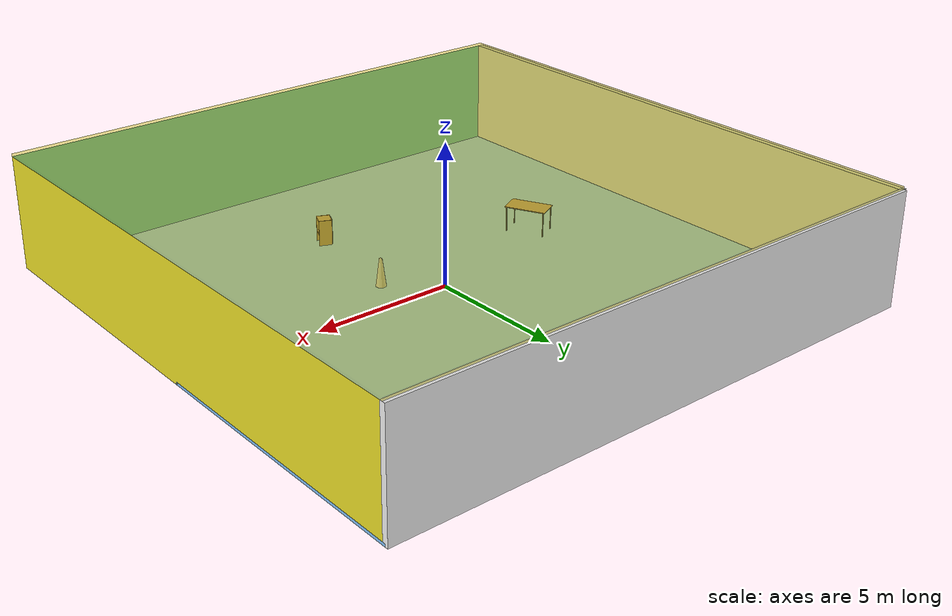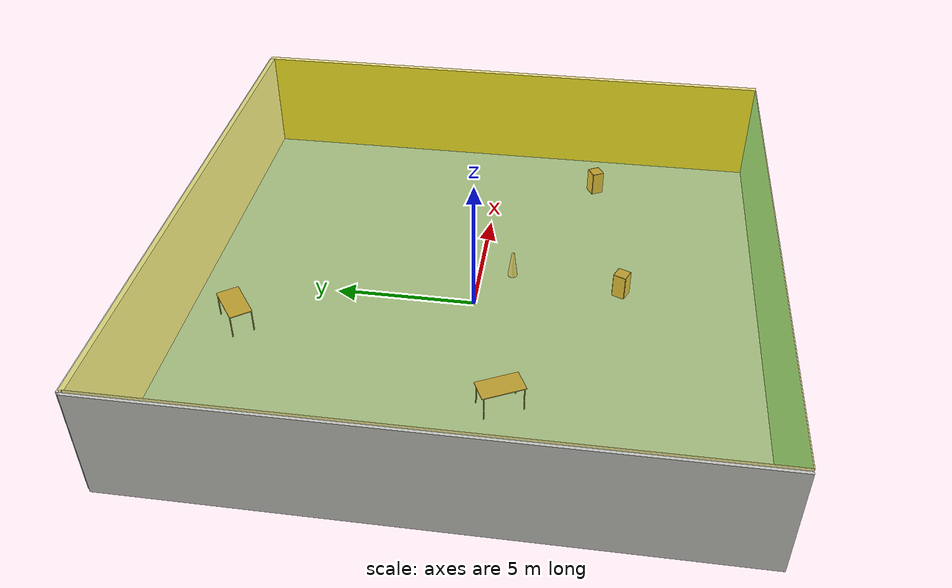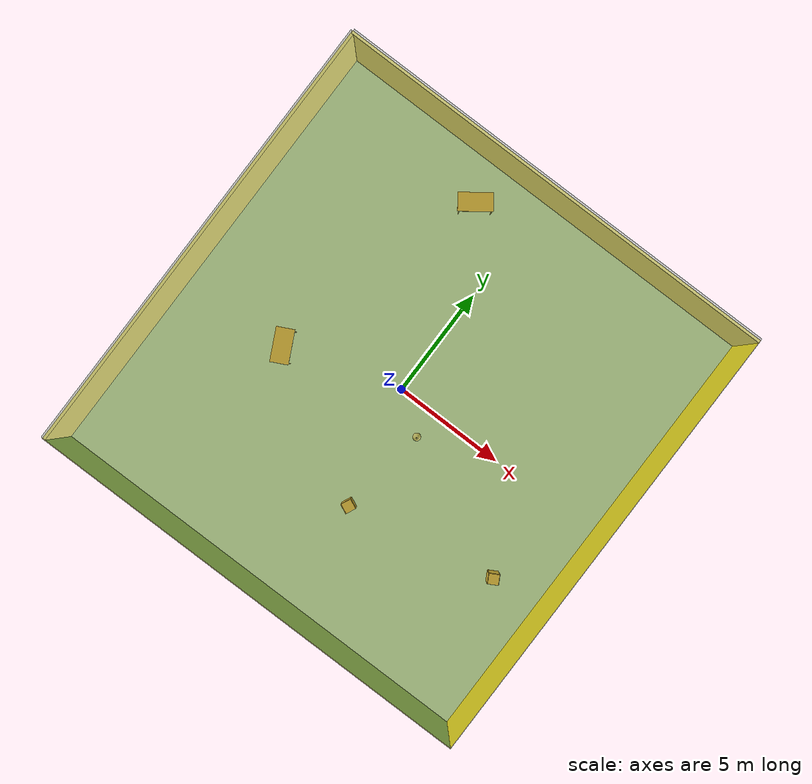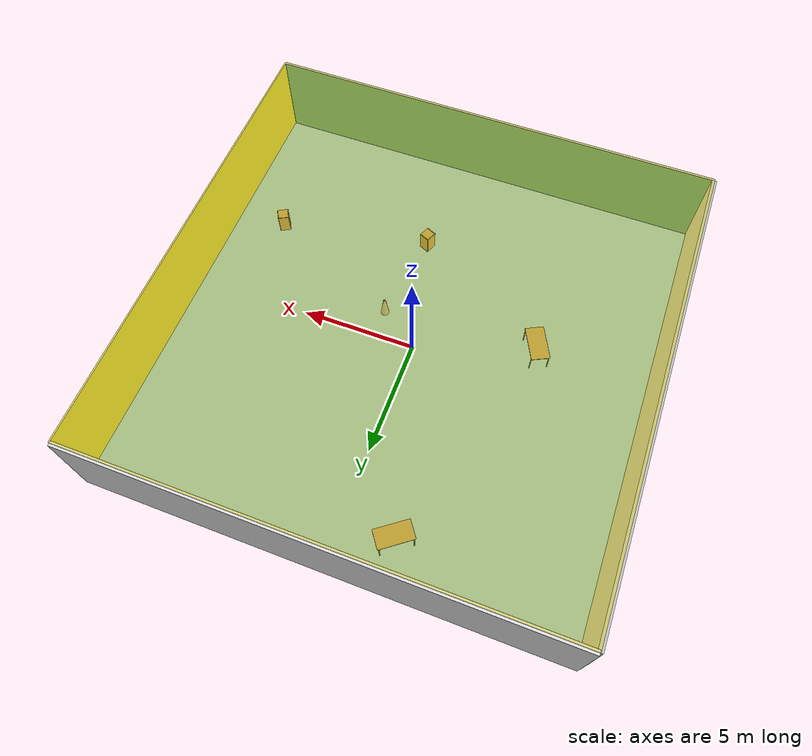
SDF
<sdf version="1.4">
 <world name="default">
  <physics type="ode">
   <max_step_size>0.001</max_step_size>
   <real_time_factor>1</real_time_factor>
   <real_time_update_rate>1000</real_time_update_rate>
   <gravity>0 0 -9.8</gravity>
  </physics>
  <scene><ambient>0.4 0.4 0.4 1</ambient><background>0.7 0.7 0.7 1</background><shadows>1</shadows></scene>
  <model name="Surrounding">
   <static>1</static>
   <link name="Ceiling">
    <collision name="Ceiling_Collision"><geometry><box><size>20 20 0.1</size></box></geometry></collision>
    <visual name="Ceiling_Visual">
     <geometry><box><size>20 20 0.1</size></box></geometry>
     <material>
      <script>
       <uri>file://media/materials/scripts/gazebo.material</uri>
       <name>Gazebo/YellowTransparent</name>
      </script>
     </material>
    </visual>
    <pose>0 0 4.05 0 0 0</pose>
   </link>
   <link name="Wall_South">
    <collision name="Wall_South_Collision">
     <geometry><box><size>20 0 4</size></box></geometry>
     <pose>0 0 2 0 -0 0</pose>
    </collision>
    <visual name="Wall_South_Visual">
     <pose>0 0 2 0 -0 0</pose>
     <geometry><box><size>20 0 4</size></box></geometry>
     <material>
      <script>
       <uri>file://media/materials/scripts/gazebo.material</uri>
       <name>Gazebo/TurquoiseGlowOutline</name>
      </script>
     </material>
    </visual>
    <velocity_decay><linear>0</linear><angular>0</angular></velocity_decay>
    <pose>0 -10 0 0 -0 0</pose>
   </link>
   <link name="Wall_East">
    <collision name="Wall_21_Collision">
     <geometry><box><size>20 0 4</size></box></geometry>
     <pose>0 0 2 0 -0 0</pose>
    </collision>
    <visual name="Wall_21_Visual">
     <pose>0 0 2 0 -0 0</pose>
     <geometry><box><size>20 0 4</size></box></geometry>
     <material>
      <script><uri>file://media/materials/scripts/gazebo.material</uri><name>Gazebo/Yellow</name></script>
     </material>
    </visual>
    <velocity_decay><linear>0</linear><angular>0</angular></velocity_decay>
    <pose>10 0 0 0 -0 1.5708</pose>
   </link>
   <link name="Wall_North">
    <collision name="Wall_22_Collision">
     <geometry><box><size>20 0.2 4</size></box></geometry>
     <pose>0 0 2 0 -0 0</pose>
    </collision>
    <visual name="Wall_22_Visual">
     <pose>0 0 2 0 -0 0</pose>
     <geometry><box><size>20 0.2 4</size></box></geometry>
     <material>
      <script><uri>file://media/materials/scripts/gazebo.material</uri><name>Gazebo/WhiteGlow</name></script>
     </material>
    </visual>
    <velocity_decay><linear>0</linear><angular>0</angular></velocity_decay>
    <pose>0 10 0 0 -0 0</pose>
   </link>
   <link name="Wall_West">
    <collision name="Wall_23_Collision">
     <geometry><box><size>20 0.2 4</size></box></geometry>
     <pose>0 0 2 0 -0 0</pose>
    </collision>
    <visual name="Wall_23_Visual">
     <pose>0 0 2 0 -0 0</pose>
     <geometry><box><size>20 0.2 4</size></box></geometry>
     <material>
      <script><uri>file://media/materials/scripts/gazebo.material</uri><name>Gazebo/CeilingTiled</name></script>
     </material>
    </visual>
    <velocity_decay><linear>0</linear><angular>0</angular></velocity_decay>
    <pose>-10 0 0 0 0 -1.5708</pose>
   </link>
   <link name="Ground_link">
    <collision name="collision">
     <pose>0 0 .05 0 -0 0</pose>
     <geometry><box><size>20 20 0.1</size></box></geometry>
    </collision>
    <visual name="visual">
     <pose>0 0 .05 0 -0 0</pose>
     <geometry><box><size>20 20 0.1</size></box></geometry>
     <material>
      <script><uri>file://media/materials/scripts/gazebo.material</uri><name>Gazebo/SkyBlue</name></script>
     </material>
    </visual>
   </link>
   <static>1</static>
  </model>
  <spherical_coordinates>
   <surface_model>EARTH_WGS84</surface_model>
   <latitude_deg>0</latitude_deg>
   <longitude_deg>0</longitude_deg>
   <elevation>0</elevation>
   <heading_deg>0</heading_deg>
  </spherical_coordinates>
  <light name="lightball_0" type="diffuse">
   <diffuse>0.8 0.8 0.8 1</diffuse>
   <specular>0.2 0.2 0.2 1</specular>
   <attenuation>
    <range>100</range>
    <constant>0.7</constant>
    <linear>0.01</linear>
    <quadratic>0.001</quadratic>
   </attenuation>
   <direction>-0.5 0.1 -0.9</direction>
   <pose>0.43647837025 3.99269642096 0.818677860006 0 0 0</pose>
  </light>
  <light name="lightball_1" type="diffuse">
   <diffuse>0.8 0.8 0.8 1</diffuse>
   <specular>0.2 0.2 0.2 1</specular>
   <attenuation>
    <range>100</range>
    <constant>0.7</constant>
    <linear>0.01</linear>
    <quadratic>0.001</quadratic>
   </attenuation>
   <direction>-0.5 0.1 -0.9</direction>
   <pose>-7.33982251174 -3.81185583856 0.928034043335 0 0 0</pose>
  </light>
  <light name="lightball_2" type="diffuse">
   <diffuse>0.8 0.8 0.8 1</diffuse>
   <specular>0.2 0.2 0.2 1</specular>
   <attenuation>
    <range>100</range>
    <constant>0.7</constant>
    <linear>0.01</linear>
    <quadratic>0.001</quadratic>
   </attenuation>
   <direction>-0.5 0.1 -0.9</direction>
   <pose>5.24450704289 -9.68397759531 0.696744670691 0 0 0</pose>
  </light>
  <light name="lightball_3" type="diffuse">
   <diffuse>0.8 0.8 0.8 1</diffuse>
   <specular>0.2 0.2 0.2 1</specular>
   <attenuation>
    <range>100</range>
    <constant>0.7</constant>
    <linear>0.01</linear>
    <quadratic>0.001</quadratic>
   </attenuation>
   <direction>-0.5 0.1 -0.9</direction>
   <pose>-9.03486545881 5.15097895109 0.806344027465 0 0 0</pose>
  </light>
  <light name="lightball_4" type="diffuse">
   <diffuse>0.8 0.8 0.8 1</diffuse>
   <specular>0.2 0.2 0.2 1</specular>
   <attenuation>
    <range>100</range>
    <constant>0.7</constant>
    <linear>0.01</linear>
    <quadratic>0.001</quadratic>
   </attenuation>
   <direction>-0.5 0.1 -0.9</direction>
   <pose>5.74088809574 0.71826049123 3.0430372726 0 0 0</pose>
  </light>
  <light name="lightball_5" type="diffuse">
   <diffuse>0.8 0.8 0.8 1</diffuse>
   <specular>0.2 0.2 0.2 1</specular>
   <attenuation>
    <range>100</range>
    <constant>0.7</constant>
    <linear>0.01</linear>
    <quadratic>0.001</quadratic>
   </attenuation>
   <direction>-0.5 0.1 -0.9</direction>
   <pose>5.91116728113 9.11063048139 0.667756450813 0 0 0</pose>
  </light>
  <include><uri>model://table</uri><pose>-5.04706508533 -1.53956273768 0 0 0 2.03279564273</pose></include>
  <include><uri>model://table</uri><pose>-2.27369595344 8.05710390206 0 0 0 0.633017761306</pose></include>
  <include><uri>model://cabinet</uri><pose>1.17116528467 -5.19388005445 0 0 0 2.72639480146</pose></include>
  <include>
   <uri>model://construction_cone</uri>
   <pose>1.71573070514 -1.20415463749 0 0 0 1.09360278796</pose>
  </include>
  <include><uri>model://cabinet</uri><pose>7.79550805704 -3.95081473312 0 0 0 2.07787847543</pose></include>
 </world>
</sdf>

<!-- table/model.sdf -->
<sdf version="1.5">
  <model name="table">
    <static>true</static>
    <link name="link">
      <collision name="surface">
        <pose>0 0 1.0 0 0 0</pose>
        <geometry>
          <box>
            <size>1.5 0.8 0.03</size>
          </box>
        </geometry>
        <surface>
          <friction>
            <ode>
              <mu>0.6</mu>
              <mu2>0.6</mu2>
            </ode>
          </friction>
        </surface>
      </collision>
      <visual name="visual1">
        <pose>0 0 1.0 0 0 0</pose>
        <geometry>
          <box>
            <size>1.5 0.8 0.03</size>
          </box>
        </geometry>
        <material>
          <script>
            <uri>model://media/materials/scripts/gazebo.material</uri>
            <name>Gazebo/Wood</name>
          </script>
        </material>
      </visual>
      <collision name="front_left_leg">
        <pose>0.68 0.38 0.5 0 0 0</pose>
        <geometry>
          <cylinder>
            <radius>0.02</radius>
            <length>1.0</length>
          </cylinder>
        </geometry>
      </collision>
      <visual name="front_left_leg">
        <pose>0.68 0.38 0.5 0 0 0</pose>
        <geometry>
          <cylinder>
            <radius>0.02</radius>
            <length>1.0</length>
          </cylinder>
        </geometry>
        <material>
          <script>
            <uri>model://media/materials/scripts/gazebo.material</uri>
            <name>Gazebo/Grey</name>
          </script>
        </material>
      </visual>
      <collision name="front_right_leg">
        <pose>0.68 -0.38 0.5 0 0 0</pose>
        <geometry>
          <cylinder>
            <radius>0.02</radius>
            <length>1.0</length>
          </cylinder>
        </geometry>
      </collision>
      <visual name="front_right_leg">
        <pose>0.68 -0.38 0.5 0 0 0</pose>
        <geometry>
          <cylinder>
            <radius>0.02</radius>
            <length>1.0</length>
          </cylinder>
        </geometry>
        <material>
          <script>
            <uri>model://media/materials/scripts/gazebo.material</uri>
            <name>Gazebo/Grey</name>
          </script>
        </material>
      </visual>
      <collision name="back_right_leg">
        <pose>-0.68 -0.38 0.5 0 0 0</pose>
        <geometry>
          <cylinder>
            <radius>0.02</radius>
            <length>1.0</length>
          </cylinder>
        </geometry>
      </collision>
      <visual name="back_right_leg">
        <pose>-0.68 -0.38 0.5 0 0 0</pose>
        <geometry>
          <cylinder>
            <radius>0.02</radius>
            <length>1.0</length>
          </cylinder>
        </geometry>
        <material>
          <script>
            <uri>model://media/materials/scripts/gazebo.material</uri>
            <name>Gazebo/Grey</name>
          </script>
        </material>
      </visual>
      <collision name="back_left_leg">
        <pose>-0.68 0.38 0.5 0 0 0</pose>
        <geometry>
          <cylinder>
            <radius>0.02</radius>
            <length>1.0</length>
          </cylinder>
        </geometry>
      </collision>
      <visual name="back_left_leg">
        <pose>-0.68 0.38 0.5 0 0 0</pose>
        <geometry>
          <cylinder>
            <radius>0.02</radius>
            <length>1.0</length>
          </cylinder>
        </geometry>
        <material>
          <script>
            <uri>model://media/materials/scripts/gazebo.material</uri>
            <name>Gazebo/Grey</name>
          </script>
        </material>
      </visual>
    </link>
  </model>
</sdf>

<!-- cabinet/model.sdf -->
<sdf version="1.5">
  <model name="cabinet">
    <static>true</static>
    <link name="cabinet_bottom_plate">
      <inertial>
        <pose>0 0 -1 0 0 0</pose>
        <inertia>
          <ixx>2.050000</ixx>
          <ixy>0</ixy>
          <ixz>0</ixz>
          <iyy>2.050000</iyy>
          <iyz>0</iyz>
          <izz>2.050000</izz>
        </inertia>
        <mass>25.000000</mass>
      </inertial>
      <collision name="cabinet_bottom_plate_geom">
        <pose>0 0 0.010000 0 0 0</pose>
        <geometry>
          <box>
            <size>0.450000 0.450000 0.020000</size>
          </box>
        </geometry>
      </collision>
      <visual name="cabinet_bottom_plate_geom_visual">
        <pose>0 0 0.010000 0 0 0</pose>
        <geometry>
          <box>
            <size>0.450000 0.450000 0.020000</size>
          </box>
        </geometry>
        <material>
          <script>
            <uri>model://media/materials/scripts/gazebo.material</uri>
            <name>Gazebo/Wood</name>
          </script>
        </material>
      </visual>
      <collision name="cabinet_bottom_plate_geom_cabinet_back_plate">
        <pose>0.235000 0 0.510000 0 0 0</pose>
        <geometry>
          <box>
            <size>0.020000 0.450000 1.020000</size>
          </box>
        </geometry>
      </collision>
      <visual name="cabinet_bottom_plate_geom_cabinet_back_plate_visual">
        <pose>0.235000 0 0.510000 0 0 0</pose>
        <geometry>
          <box>
            <size>0.020000 0.450000 1.020000</size>
          </box>
        </geometry>
        <material>
          <script>
            <uri>model://media/materials/scripts/gazebo.material</uri>
            <name>Gazebo/Wood</name>
          </script>
        </material>
      </visual>
      <collision name="cabinet_bottom_plate_geom_cabinet_left_plate">
        <pose>0 0.235000 0.510000 0 0 0</pose>
        <geometry>
          <box>
            <size>0.450000 0.020000 1.020000</size>
          </box>
        </geometry>
      </collision>
      <visual name="cabinet_bottom_plate_geom_cabinet_left_plate_visual">
        <pose>0 0.235000 0.510000 0 0 0</pose>
        <geometry>
          <box>
            <size>0.450000 0.020000 1.020000</size>
          </box>
        </geometry>
        <material>
          <script>
            <uri>model://media/materials/scripts/gazebo.material</uri>
            <name>Gazebo/Wood</name>
          </script>
        </material>
      </visual>
      <collision name="cabinet_bottom_plate_geom_cabinet_middle_plate">
        <pose>0 0 0.510000 0 0 0</pose>
        <geometry>
          <box>
            <size>0.450000 0.450000 0.020000</size>
          </box>
        </geometry>
      </collision>
      <visual name="cabinet_bottom_plate_geom_cabinet_middle_plate_visual">
        <pose>0 0 0.510000 0 0 0</pose>
        <geometry>
          <box>
            <size>0.450000 0.450000 0.020000</size>
          </box>
        </geometry>
        <material>
          <script>
            <uri>model://media/materials/scripts/gazebo.material</uri>
            <name>Gazebo/Wood</name>
          </script>
        </material>
      </visual>
      <collision name="cabinet_bottom_plate_geom_cabinet_right_plate">
        <pose>0 -0.235000 0.510000 0 0 0</pose>
        <geometry>
          <box>
            <size>0.450000 0.020000 1.020000</size>
          </box>
        </geometry>
      </collision>
      <visual name="cabinet_bottom_plate_geom_cabinet_right_plate_visual">
        <pose>0 -0.235000 0.510000 0 0 0</pose>
        <geometry>
          <box>
            <size>0.450000 0.020000 1.020000</size>
          </box>
        </geometry>
        <material>
          <script>
            <uri>model://media/materials/scripts/gazebo.material</uri>
            <name>Gazebo/Wood</name>
          </script>
        </material>
      </visual>
      <collision name="cabinet_bottom_plate_geom_cabinet_top_plate">
        <pose>0 0 1.010000 0 0 0</pose>
        <geometry>
          <box>
            <size>0.450000 0.450000 0.020000</size>
          </box>
        </geometry>
      </collision>
      <visual name="cabinet_bottom_plate_geom_cabinet_top_plate_visual">
        <pose>0 0 1.010000 0 0 0</pose>
        <geometry>
          <box>
            <size>0.450000 0.450000 0.020000</size>
          </box>
        </geometry>
        <material>
          <script>
            <uri>model://media/materials/scripts/gazebo.material</uri>
            <name>Gazebo/Wood</name>
          </script>
        </material>
      </visual>
    </link>
  </model>
</sdf>

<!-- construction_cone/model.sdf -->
<sdf version="1.5">
  <model name="Construction Cone">
    <link name="link">
      <collision name="collision">
        <geometry>
          <mesh>
            <scale>10 10 10</scale>
            <uri>file://isr-testbed/construction_cone/meshes/construction_cone.dae</uri>
          </mesh>
        </geometry>
      </collision>
      <visual name="visual">
        <geometry>
          <mesh>
            <scale>10 10 10</scale>
            <uri>file://isr-testbed/construction_cone/meshes/construction_cone.dae</uri>
          </mesh>
        </geometry>
      </visual>
    </link>
  </model>
</sdf>
